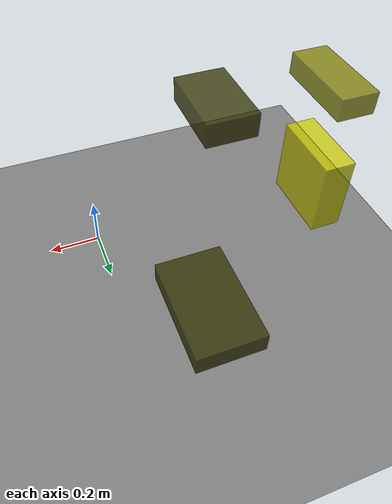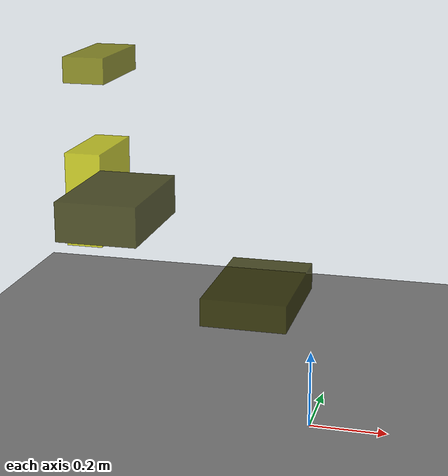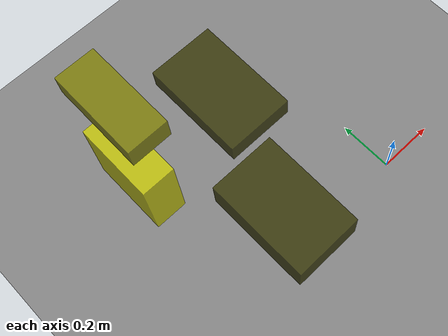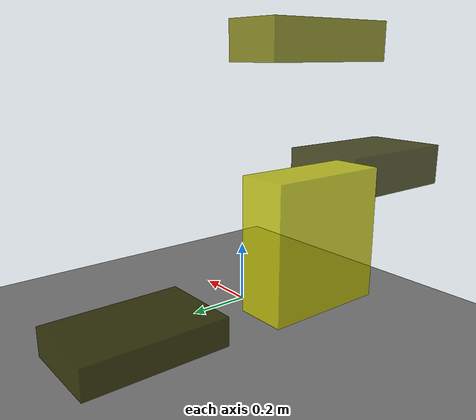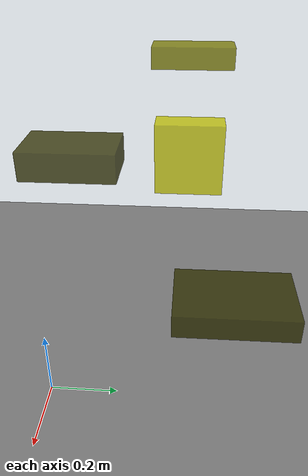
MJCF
<?xml version="1.0"?>
<mujoco model="obstacle_scene">
  <compiler angle="radian" coordinate="local"/>
  <option timestep="0.001" gravity="0 0 -9.81"/>

  <asset>
    <material name="obstacle_mat" rgba="0.8 0.8 0.0 0.8"/>
    <material name="ground_mat" rgba="0.5 0.5 0.5 1"/>
  </asset>

  <worldbody>
    <!-- Ground plane -->
    <geom name="ground" type="plane" size="3 3 0.1" material="ground_mat"/>

    <!-- Obstacles -->
    <body name="obstacle_0" pos="-0.506018 -0.001715 0.546383">
      <geom name="obs_0" type="box" size="0.103694 0.163143 0.050602" rgba="0.2 0.2 0.0 0.8"/>
    </body>
    <body name="obstacle_1" pos="-0.688224 0.395973 0.845949">
      <geom name="obs_1" type="box" size="0.058284 0.136626 0.035536" rgba="0.5 0.5 0.0 0.8"/>
    </body>
    <body name="obstacle_2" pos="-0.702079 0.392994 0.478701">
      <geom name="obs_2" type="box" size="0.051645 0.126230 0.133664" rgba="0.8 0.8 0.0 0.8"/>
    </body>
    <body name="obstacle_3" pos="-0.263912 0.556909 0.141339">
      <geom name="obs_3" type="box" size="0.127427 0.201134 0.041295" rgba="0.2 0.2 0.0 0.8"/>
    </body>
  </worldbody>
</mujoco>
